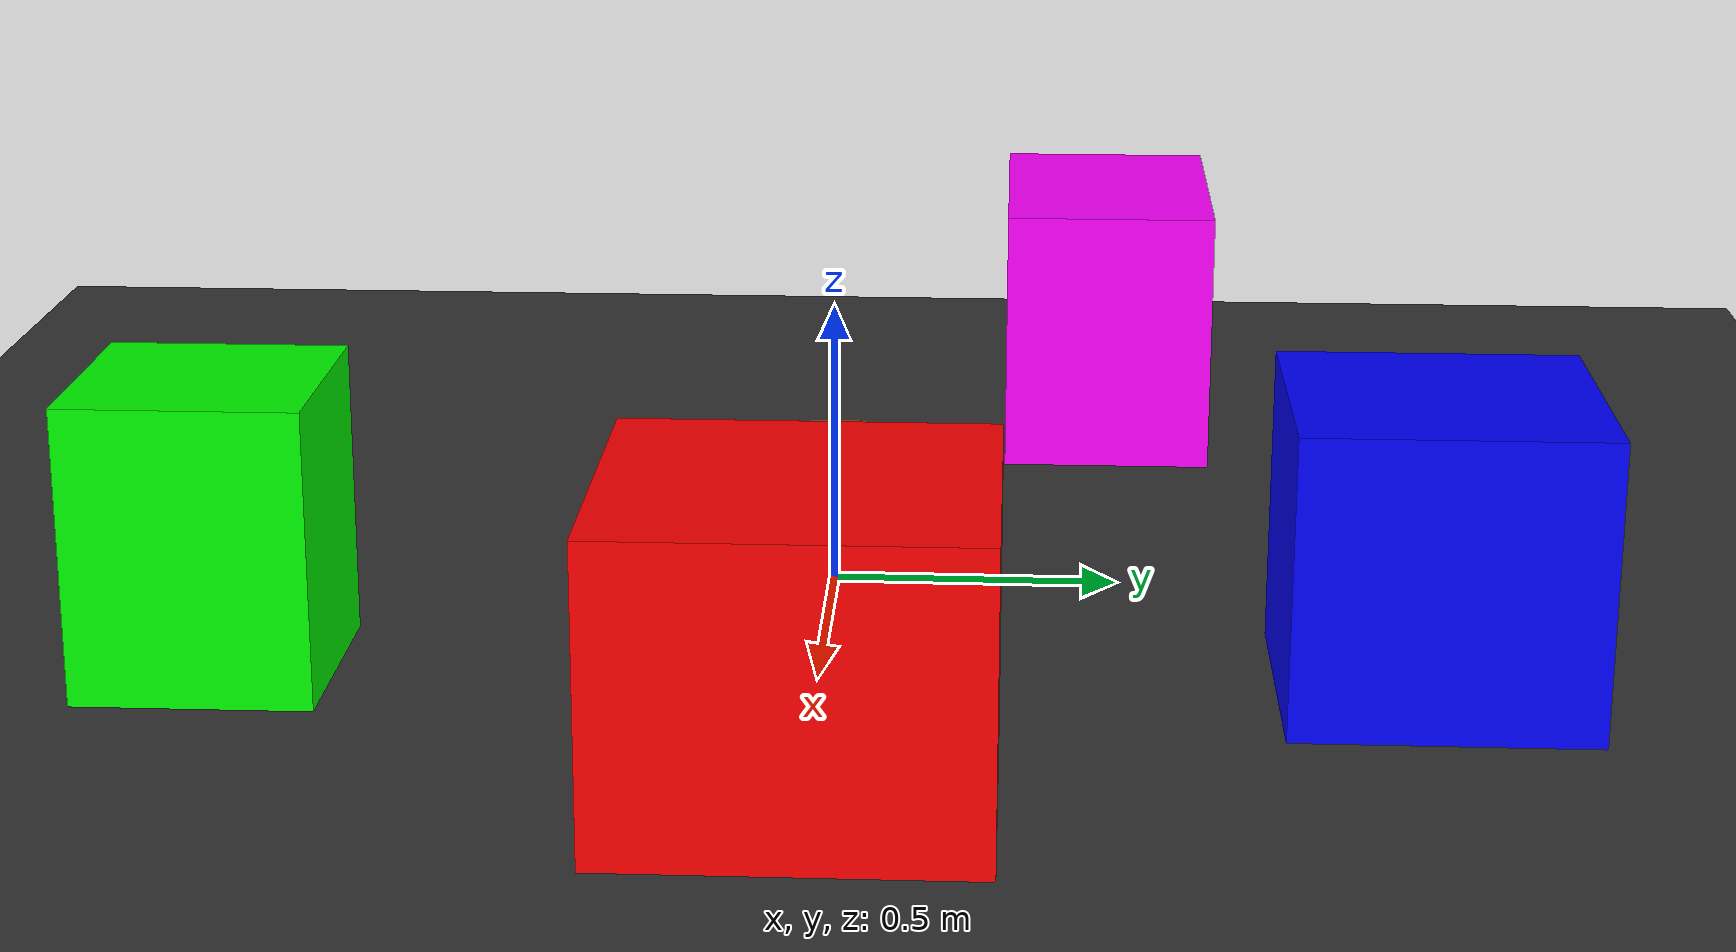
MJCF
<mujoco model="navigation_world">

    <compiler autolimits="true"/>

    <!-- 引入机器人 -->
    <include file="robot.xml"/>

    <asset>

        <!-- 地面纹理 -->
        <texture
            name="grid"
            type="2d"
            builtin="checker"
            width="512"
            height="512"
            rgb1=".15 .15 .15"
            rgb2=".25 .25 .25"/>

        <material
            name="ground"
            texture="grid"
            texrepeat="10 10"/>

        <!-- 天空 -->
        <texture
            name="sky"
            type="skybox"
            builtin="gradient"
            width="256"
            rgb1="0.4 0.6 0.8"
            rgb2="0.1 0.2 0.3"/>

    </asset>

    <worldbody>

        <!-- 地面 -->

        <geom
            name="floor"
            type="plane"
            size="5 5 0.1"
            material="ground"/>

        <!-- 障碍物1 -->

        <body
            name="obstacle_red"
            pos="1 0 0.25">

            <geom
                name="box1"
                type="box"
                size="0.3 0.3 0.25"
                rgba="1 0 0 1"/>

        </body>

        <!-- 障碍物2 -->

        <body
            name="obstacle_blue"
            pos="0.5 1 0.25">

            <geom
                name="box2"
                type="box"
                size="0.25 0.25 0.25"
                rgba="0 0 1 1"/>

        </body>

        <!-- 障碍物3 -->

        <body
            name="obstacle_green"
            pos="0.5 -1 0.25">

            <geom
                name="box3"
                type="box"
                size="0.2 0.2 0.25"
                rgba="0 1 0 1"/>

        </body>

        <!-- 障碍物4 -->

        <body
            name="obstacle_purple"
            pos="-1 0.5 0.25">

            <geom
                name="box4"
                type="box"
                size="0.3 0.2 0.25"
                rgba="1 0 1 1"/>

        </body>

    </worldbody>

</mujoco>

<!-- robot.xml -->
<mujoco>

    <compiler autolimits="true"/>

    <default>
        <joint damping="0.1"/>
        <geom contype="1"
              conaffinity="1"/>
    </default>

    <worldbody>

        <!-- robot -->

        <body name="robot"
              pos="0 0 0.15">

            <joint name="tx"
                   type="slide"
                   axis="1 0 0"/>

            <joint name="ty"
                   type="slide"
                   axis="0 1 0"/>

            <!-- rotation -->
            <joint name="rz"
                   type="hinge"
                   axis="0 0 1"/>

            <geom
                name="robot_body"
                type="cylinder"
                size="0.15 0.1"
                rgba="0.9 0.5 0.1 1"/>

            <site
                name="front"
                pos="0.15 0 0"
                size="0.03"/>

            <camera
                name="robot_camera"
                pos="0.22 0 0.50"
                xyaxes="0 -1 0 0.35 0 0.94"
                fovy="70"/>

        </body>

    </worldbody>

    <actuator>

        <velocity
            name="vx"
            joint="tx"
            ctrlrange="-4.5 4.5"
            kv="420"/>

        <velocity
            name="vy"
            joint="ty"
            ctrlrange="-4.5 4.5"
            kv="240"/>

        <velocity
            name="wz"
            joint="rz"
            ctrlrange="-2 2"
            kv="50"/>

    </actuator>

</mujoco>
